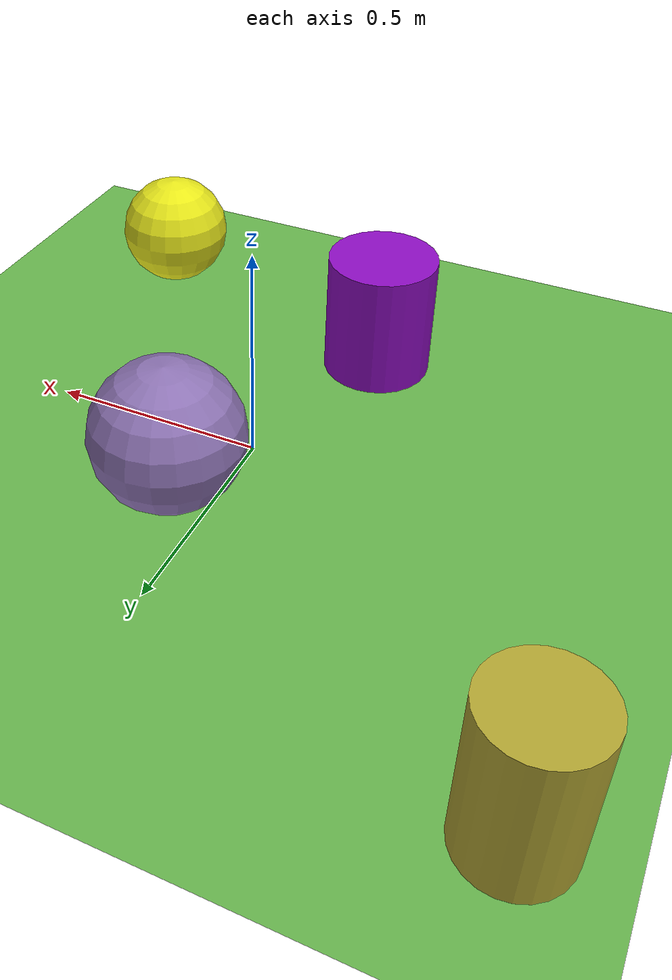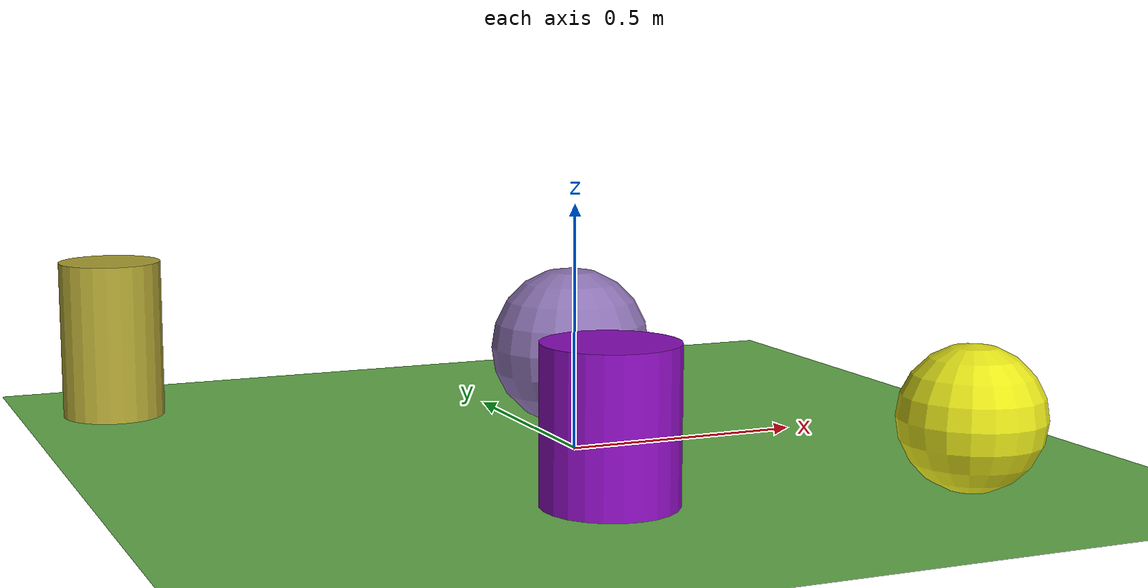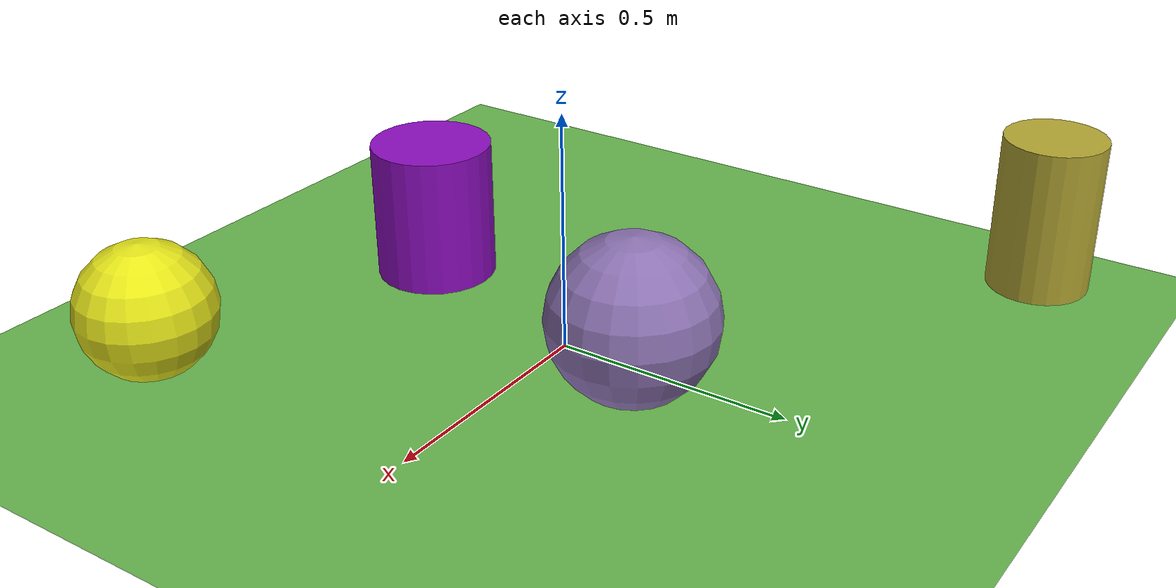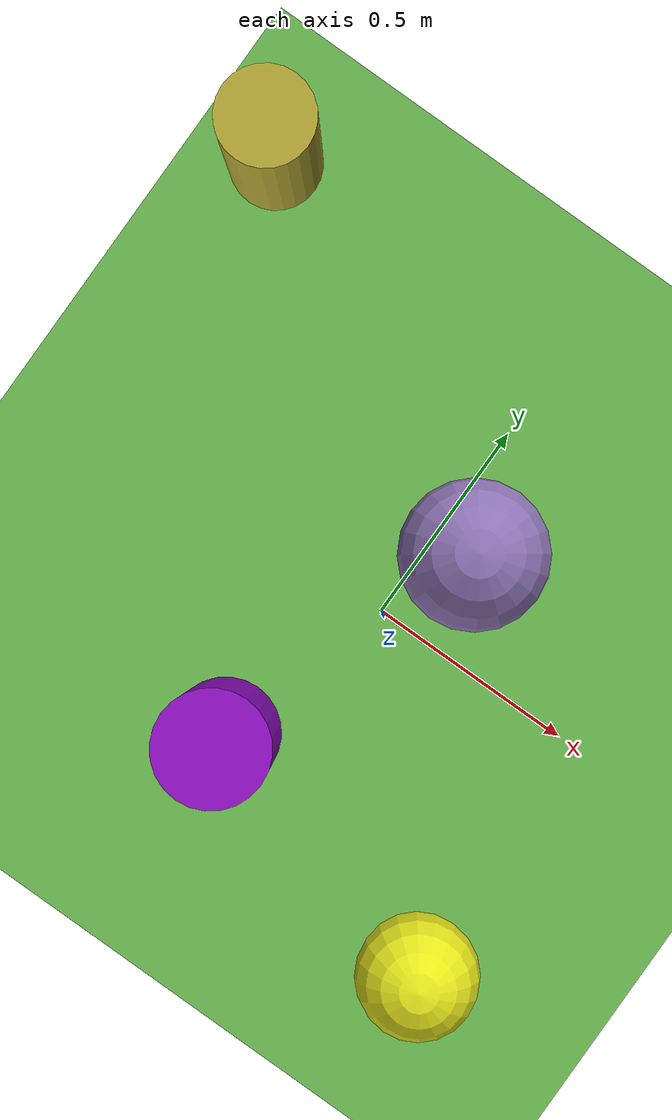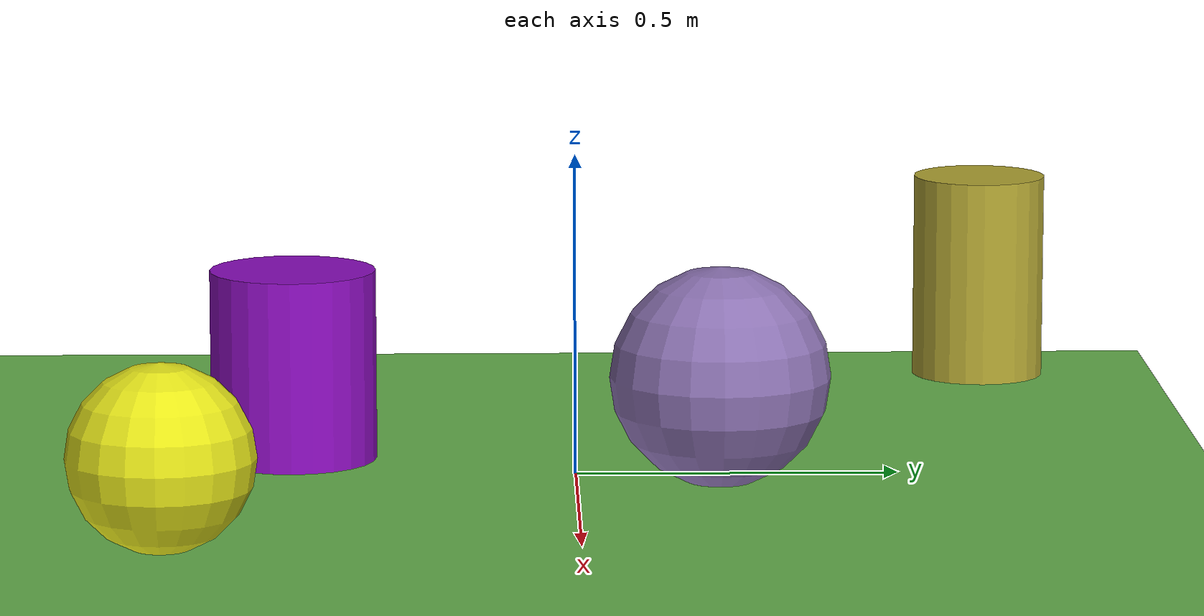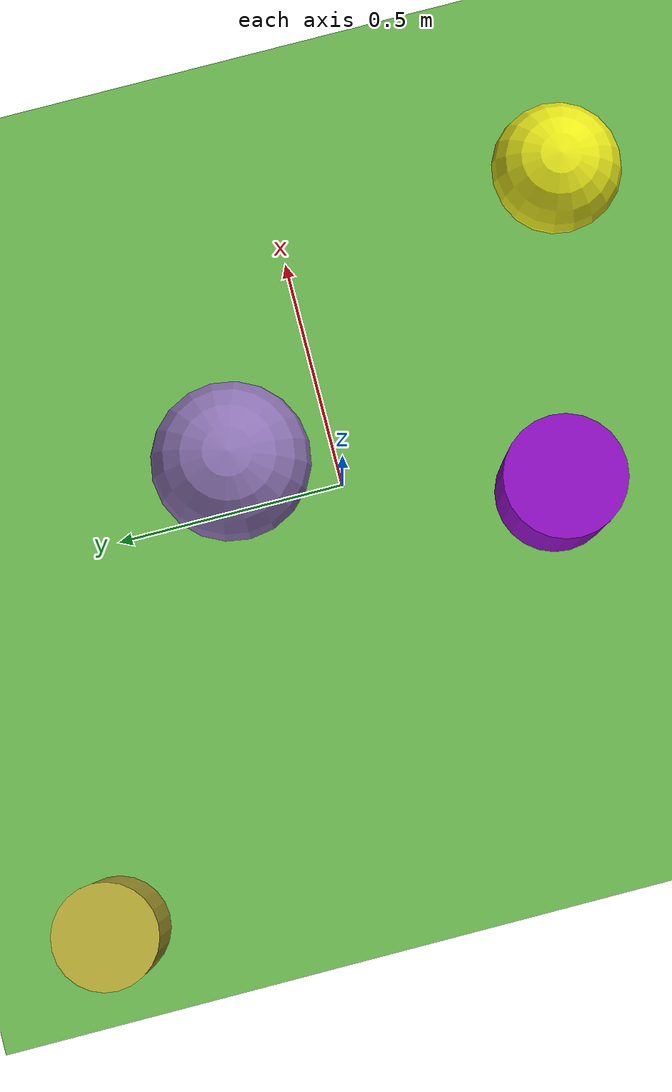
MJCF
<mujoco>
   <asset>
<texture type="skybox" builtin="gradient" rgb1="0.6 0.6 0.4" rgb2="0.1 0.9 0.9" width="256" height="256"/>
<texture name="checker_0" builtin="checker" type="2d" rgb1="0.8 0.4 0.4" rgb2="0.6 0.9 0.0" width="200" height="200"/>
<texture name="gradient_1" builtin="gradient" rgb1="0.4 0.7 0.6" rgb2="0.7 0.2 0.8" width="200" height="200"/>
<texture name="checker_2" builtin="checker" type="2d" rgb1="0.8 0.0 0.5" rgb2="0.3 0.1 1.0" width="200" height="200"/>
<texture name="flat_3" builtin="flat" rgb1="0.9 0.9 0.1" rgb2="0.9 0.9 0.1"  width="200" height="200"/><material name="checker_0_mat" reflectance="0" texrepeat="2 2" texture="checker_0" texuniform="false" />
<material name="gradient_1_mat" reflectance="0" texture="gradient_1" texuniform="true"/>
<material name="checker_2_mat" reflectance="0" texrepeat="4 4" texture="checker_2" texuniform="false" />
<material name="flat_3_mat" reflectance="0" texture="flat_3" texuniform="true"/>
   </asset>

   <worldbody>
      <light diffuse=".9 .9 .9" pos="0 0 3" dir="0 0 -1"/>
     <geom type="plane" size="1 1 0.1" rgba="0.4 0.7 0.3 1"/>
<geom type="cylinder" pos="-0.8 0.7 0.17" size="0.11 0.17 0.17" material="checker_0_mat" />
<geom type="sphere" pos="0.09 0.22 0.17" size="0.17 0.17 0.17" material="gradient_1_mat" />
<geom type="cylinder" pos="-0.13 -0.44 0.15" size="0.13 0.15 0.15" material="checker_2_mat" />
<geom type="sphere" pos="0.53 -0.61 0.14" size="0.14 0.14 0.14" material="flat_3_mat" /><camera euler="60 0 180" fovy="60" name="camera_a" pos="0 -1.5 1"></camera>   </worldbody>
</mujoco>
